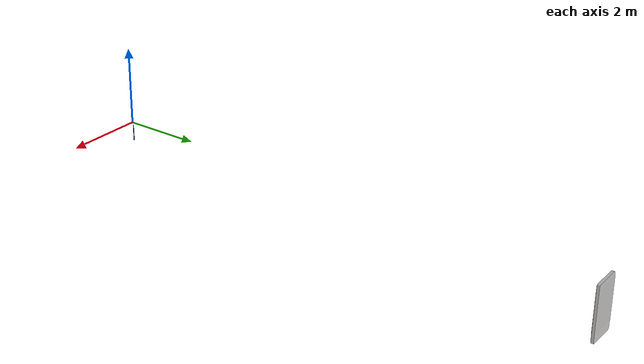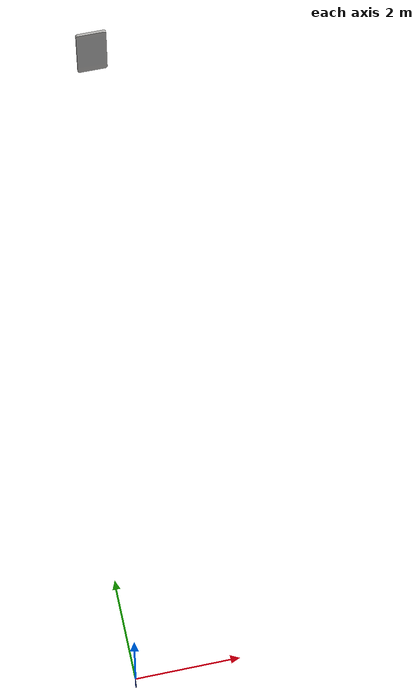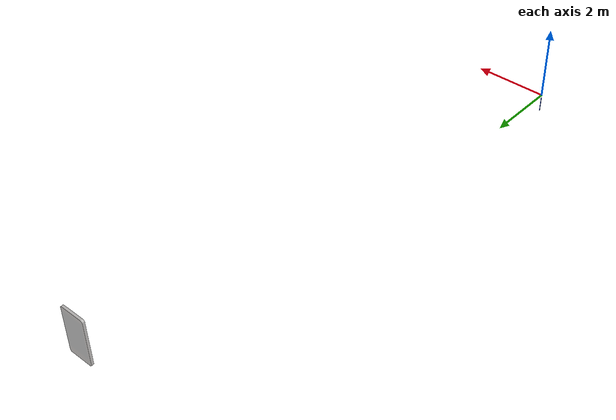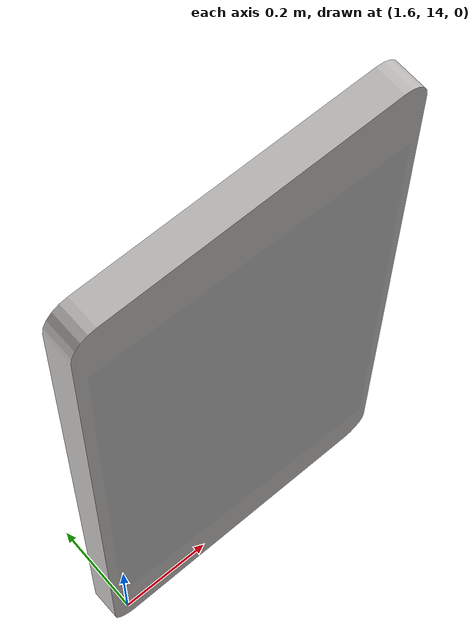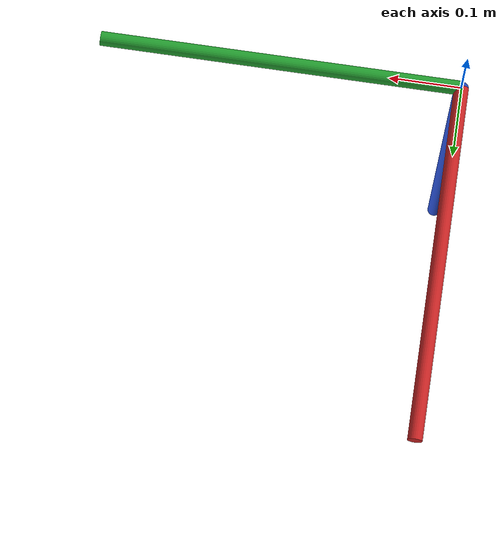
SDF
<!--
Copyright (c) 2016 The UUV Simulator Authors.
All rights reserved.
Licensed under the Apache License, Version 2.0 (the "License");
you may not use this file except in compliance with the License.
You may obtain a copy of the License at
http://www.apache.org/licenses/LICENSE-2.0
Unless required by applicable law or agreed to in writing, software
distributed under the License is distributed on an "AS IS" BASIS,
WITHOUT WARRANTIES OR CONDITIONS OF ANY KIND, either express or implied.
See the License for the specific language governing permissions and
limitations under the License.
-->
<?xml version="1.0" ?>
<sdf version="1.5">
  <world name="testyolact">
    <physics name="default_physics" default="true" type="ode">
      <max_step_size>0.002</max_step_size>
      <real_time_factor>1</real_time_factor>
      <real_time_update_rate>500</real_time_update_rate>
      <ode>
        <solver>
          <type>quick</type>
          <iters>50</iters>
          <sor>0.5</sor>
        </solver>
      </ode>
    </physics>
    <scene>
      <ambient>0.01 0.01 0.01 1.0</ambient>
      <sky>
        <clouds>
          <speed>12</speed>
        </clouds>
      </sky>
      <shadows>1</shadows>
    </scene>

    <!-- Origin placed somewhere in the middle of the Bodensee (Germany)  -->
    <spherical_coordinates>
      <latitude_deg>47.6278771</latitude_deg>
      <longitude_deg>9.334553</longitude_deg>
    </spherical_coordinates>

      <!-- Global light source -->
    <light type="directional" name="sun1">
      <pose>50 0 150 0 0 0</pose>
      <diffuse>1 1 1 1</diffuse>
      <specular>.1 .1 .1 1</specular>
      <direction>0.3 0.3 -1</direction>
      <cast_shadows>true</cast_shadows>
    </light>

    <!-- Global light source -->
    <include>
      <uri>model://sun</uri>
    </include>

    <!-- Virtual NED frame -->
    <include>
      <uri>model://ned_frame</uri>
      <pose>0 0 0 0 0 0</pose>
    </include>
  <!-- Buoys models -->

    <model name="buoy1">
      <pose>0 0 0  0 0 0</pose>
      <static>true</static>
      <link name="body">
       <visual name="visual">
      <pose>0 0 0 0 0 0</pose>
      <geometry>
        <mesh><uri>/ws/src/vanttec_uv_sim/uv_worlds/models/props/buoys/buoy1.dae</uri></mesh>
      </geometry>
      </visual>
      </link>
    </model>

  </world>
</sdf>

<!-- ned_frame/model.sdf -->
<sdf version='1.5'>
    <model name="world_ned">

      <pose>0 0 0 0 0 0</pose>
      <static>true</static>

      <link name="world_ned">
        <gravity>0</gravity>
        <pose>0 0 0 3.14159265359 0 1.5707963267948966</pose>

        <visual name="N_visual">
          <pose>0.25 0 0 1.5707963267948966 0 1.5707963267948966</pose>
          <geometry>
            <cylinder>
              <radius>0.01</radius>
              <length>0.5</length>
            </cylinder>
          </geometry>
          <material>
            <script>
              <uri>file://media/materials/scripts/gazebo.material</uri>
              <name>Gazebo/Red</name>
            </script>
          </material>
        </visual>

        <visual name="E_visual">
          <pose>0 0.25 0 1.5707963267948966 0 0</pose>
          <geometry>
            <cylinder>
              <radius>0.01</radius>
              <length>0.5</length>
            </cylinder>
          </geometry>
          <material>
            <script>
              <uri>file://media/materials/scripts/gazebo.material</uri>
              <name>Gazebo/Green</name>
            </script>
          </material>
        </visual>

        <visual name="D_visual">
          <pose>0 0 0.25 0 0 0</pose>
          <geometry>
            <cylinder>
              <radius>0.01</radius>
              <length>0.5</length>
            </cylinder>
          </geometry>
          <material>
            <script>
              <uri>file://media/materials/scripts/gazebo.material</uri>
              <name>Gazebo/Blue</name>
            </script>
          </material>
        </visual>
      </link>
    </model>
</sdf>
